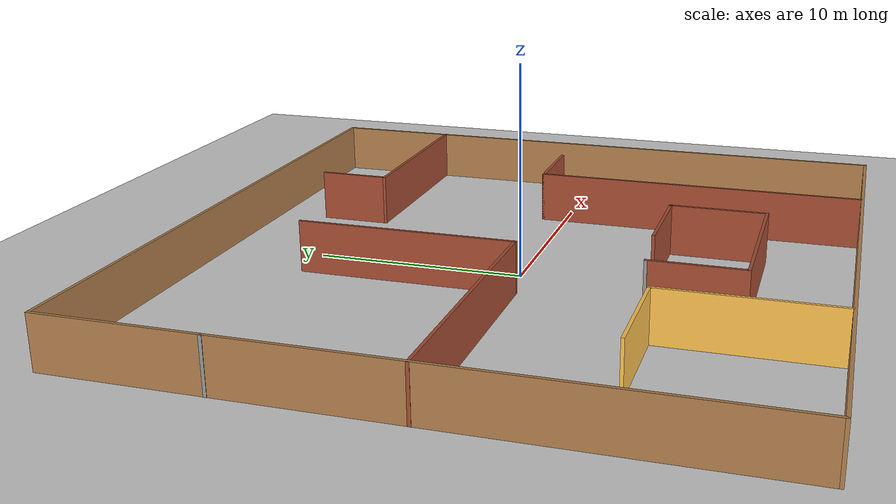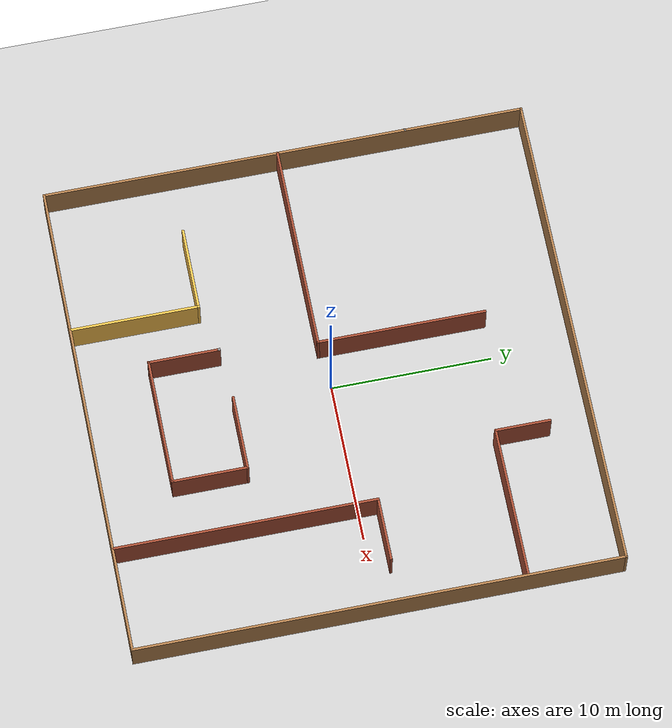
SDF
<sdf version="1.6">
 <world name="default">
  <light name="light0" type="directional">
   <pose>0 -18.818 8 0.75 -0 0</pose>
   <diffuse>0.5 0.5 0.5 1</diffuse>
   <specular>0.1 0.1 0.1 1</specular>
   <direction>0.1 0.1 -0.9</direction>
   <attenuation>
    <range>20</range>
    <constant>0.5</constant>
    <linear>0.01</linear>
    <quadratic>0.001</quadratic>
   </attenuation>
   <cast_shadows>0</cast_shadows>
  </light>
  <light name="light3" type="directional">
   <pose>3.9239 1.64974 4 0 1.2 0</pose>
   <diffuse>0.5 0.5 0.5 1</diffuse>
   <specular>0.1 0.1 0.1 1</specular>
   <direction>0.1 0.1 -0.9</direction>
   <attenuation>
    <range>20</range>
    <constant>0.5</constant>
    <linear>0.01</linear>
    <quadratic>0.001</quadratic>
   </attenuation>
   <cast_shadows>0</cast_shadows>
  </light>
  <light name="light5" type="directional">
   <pose>0.454419 12.4783 5 -0.8 0 0</pose>
   <diffuse>0.5 0.5 0.5 1</diffuse>
   <specular>0.1 0.1 0.1 1</specular>
   <direction>0.1 0.1 -0.9</direction>
   <attenuation>
    <range>20</range>
    <constant>0.5</constant>
    <linear>0.01</linear>
    <quadratic>0.001</quadratic>
   </attenuation>
   <cast_shadows>0</cast_shadows>
  </light>
  <scene><shadows>false</shadows><ambient>0.5 0.5 0.5 1.0</ambient><grid>false</grid></scene>
  <include><uri>model://ground_plane</uri></include>
  <model name="espilon_room">
   <pose>-0.0092 0 0 0 -0 0</pose>
   <link name="Wall_11">
    <collision name="Wall_11_Collision">
     <geometry><box><size>30.15 0.15 2.5</size></box></geometry>
     <pose>0 0 1.25 0 -0 0</pose>
    </collision>
    <visual name="Wall_11_Visual">
     <pose>0 0 1.25 0 -0 0</pose>
     <geometry><box><size>30.15 0.15 2.5</size></box></geometry>
     <material>
      <script><uri>file://media/materials/scripts/gazebo.material</uri><name>Gazebo/Wood</name></script>
      <ambient>1 1 1 1</ambient>
     </material>
     <meta><layer>0</layer></meta>
    </visual>
    <pose>0.0092 -15 0 0 -0 0</pose>
   </link>
   <link name="Wall_13">
    <collision name="Wall_13_Collision">
     <geometry><box><size>30.15 0.15 2.5</size></box></geometry>
     <pose>0 0 1.25 0 -0 0</pose>
    </collision>
    <visual name="Wall_13_Visual">
     <pose>0 0 1.25 0 -0 0</pose>
     <geometry><box><size>30.15 0.15 2.5</size></box></geometry>
     <material>
      <script><uri>file://media/materials/scripts/gazebo.material</uri><name>Gazebo/Wood</name></script>
      <ambient>1 1 1 1</ambient>
     </material>
     <meta><layer>0</layer></meta>
    </visual>
    <pose>-14.9908 0 0 0 -0 1.5708</pose>
   </link>
   <link name="Wall_15">
    <collision name="Wall_15_Collision">
     <geometry><box><size>30.15 0.15 2.5</size></box></geometry>
     <pose>0 0 1.25 0 -0 0</pose>
    </collision>
    <visual name="Wall_15_Visual">
     <pose>0 0 1.25 0 -0 0</pose>
     <geometry><box><size>30.15 0.15 2.5</size></box></geometry>
     <material>
      <script><uri>file://media/materials/scripts/gazebo.material</uri><name>Gazebo/Wood</name></script>
      <ambient>1 1 1 1</ambient>
     </material>
     <meta><layer>0</layer></meta>
    </visual>
    <pose>15.0092 0 0 0 -0 1.5708</pose>
   </link>
   <link name="Wall_17">
    <collision name="Wall_17_Collision">
     <geometry><box><size>30.15 0.15 2.5</size></box></geometry>
     <pose>0 0 1.25 0 -0 0</pose>
    </collision>
    <visual name="Wall_17_Visual">
     <pose>0 0 1.25 0 -0 0</pose>
     <geometry><box><size>30.15 0.15 2.5</size></box></geometry>
     <material>
      <script><uri>file://media/materials/scripts/gazebo.material</uri><name>Gazebo/Wood</name></script>
      <ambient>1 1 1 1</ambient>
     </material>
     <meta><layer>0</layer></meta>
    </visual>
    <pose>0.0092 15 0 0 -0 0</pose>
   </link>
   <link name="Wall_19">
    <collision name="Wall_19_Collision">
     <geometry><box><size>0.16 0.15 2.5</size></box></geometry>
     <pose>0 0 1.25 0 -0 0</pose>
    </collision>
    <visual name="Wall_19_Visual">
     <pose>0 0 1.25 0 -0 0</pose>
     <geometry><box><size>0.16 0.15 2.5</size></box></geometry>
     <material>
      <script><uri>file://media/materials/scripts/gazebo.material</uri><name>Gazebo/Grey</name></script>
      <ambient>1 1 1 1</ambient>
     </material>
     <meta><layer>0</layer></meta>
    </visual>
    <pose>-15.0042 7.65112 0 0 -0 0</pose>
   </link>
   <link name="Wall_21">
    <collision name="Wall_21_Collision">
     <geometry><box><size>13 0.15 2.5</size></box></geometry>
     <pose>0 0 1.25 0 -0 0</pose>
    </collision>
    <visual name="Wall_21_Visual">
     <pose>0 0 1.25 0 -0 0</pose>
     <geometry><box><size>13 0.15 2.5</size></box></geometry>
     <material>
      <script><uri>file://media/materials/scripts/gazebo.material</uri><name>Gazebo/Bricks</name></script>
      <ambient>0.760784 0.662745 0.627451 1</ambient>
     </material>
     <meta><layer>0</layer></meta>
    </visual>
    <pose>-8.57557 -0.367114 0 0 -0 1.8e-05</pose>
   </link>
   <link name="Wall_22">
    <collision name="Wall_22_Collision">
     <geometry><box><size>10.517 0.15 2.5</size></box></geometry>
     <pose>0 0 1.25 0 -0 0</pose>
    </collision>
    <visual name="Wall_22_Visual">
     <pose>0 0 1.25 0 -0 0</pose>
     <geometry><box><size>10.517 0.15 2.5</size></box></geometry>
     <material>
      <script><uri>file://media/materials/scripts/gazebo.material</uri><name>Gazebo/Bricks</name></script>
      <ambient>0.760784 0.662745 0.627451 1</ambient>
     </material>
     <meta><layer>0</layer></meta>
    </visual>
    <pose>-2.1508 4.8165 0 0 -0 1.5708</pose>
   </link>
   <link name="Wall_26">
    <collision name="Wall_26_Collision">
     <geometry><box><size>16.25 0.15 2.5</size></box></geometry>
     <pose>0 0 1.25 0 -0 0</pose>
    </collision>
    <visual name="Wall_26_Visual">
     <pose>0 0 1.25 0 -0 0</pose>
     <geometry><box><size>16.25 0.15 2.5</size></box></geometry>
     <material>
      <script><uri>file://media/materials/scripts/gazebo.material</uri><name>Gazebo/Bricks</name></script>
      <ambient>0.996078 0.47451 0.0196078 1</ambient>
     </material>
     <meta><layer>0</layer></meta>
    </visual>
    <pose>8.53073 -6.85748 0 0 -0 1.5708</pose>
   </link>
   <link name="Wall_27">
    <collision name="Wall_27_Collision">
     <geometry><box><size>4 0.15 2.5</size></box></geometry>
     <pose>0 0 1.25 0 -0 0</pose>
    </collision>
    <visual name="Wall_27_Visual">
     <pose>0 0 1.25 0 -0 0</pose>
     <geometry><box><size>4 0.15 2.5</size></box></geometry>
     <material>
      <script><uri>file://media/materials/scripts/gazebo.material</uri><name>Gazebo/Bricks</name></script>
      <ambient>0.996078 0.47451 0.0196078 1</ambient>
     </material>
     <meta><layer>0</layer></meta>
    </visual>
    <pose>10.4557 1.19252 0 0 -0 0</pose>
   </link>
   <link name="Wall_29">
    <collision name="Wall_29_Collision">
     <geometry><box><size>8 0.15 2.5</size></box></geometry>
     <pose>0 0 1.25 0 -0 0</pose>
    </collision>
    <visual name="Wall_29_Visual">
     <pose>0 0 1.25 0 -0 0</pose>
     <geometry><box><size>8 0.15 2.5</size></box></geometry>
     <material>
      <script><uri>file://media/materials/scripts/gazebo.material</uri><name>Gazebo/Grey</name></script>
      <ambient>1 0.764706 0.305882 1</ambient>
     </material>
     <meta><layer>0</layer></meta>
    </visual>
    <pose>-5.8668 -10.9825 0 0 -0 1.5708</pose>
   </link>
   <link name="Wall_30">
    <collision name="Wall_30_Collision">
     <geometry><box><size>5.25 0.15 2.5</size></box></geometry>
     <pose>0 0 1.25 0 -0 0</pose>
    </collision>
    <visual name="Wall_30_Visual">
     <pose>0 0 1.25 0 -0 0</pose>
     <geometry><box><size>5.25 0.15 2.5</size></box></geometry>
     <material>
      <script><uri>file://media/materials/scripts/gazebo.material</uri><name>Gazebo/Grey</name></script>
      <ambient>1 0.764706 0.305882 1</ambient>
     </material>
     <meta><layer>0</layer></meta>
    </visual>
    <pose>-8.4168 -7.05748 0 0 -0 3.14159</pose>
   </link>
   <link name="Wall_32">
    <collision name="Wall_32_Collision">
     <geometry><box><size>0.16 0.15 2.5</size></box></geometry>
     <pose>0 0 1.25 0 -0 0</pose>
    </collision>
    <visual name="Wall_32_Visual">
     <pose>0 0 1.25 0 -0 0</pose>
     <geometry><box><size>0.16 0.15 2.5</size></box></geometry>
     <material>
      <script><uri>file://media/materials/scripts/gazebo.material</uri><name>Gazebo/Grey</name></script>
      <ambient>1 1 1 1</ambient>
     </material>
     <meta><layer>0</layer></meta>
    </visual>
    <pose>14.9346 9.02687 0 0 -0 0</pose>
   </link>
   <link name="Wall_33">
    <collision name="Wall_33_Collision">
     <geometry><box><size>9.5 0.15 2.5</size></box></geometry>
     <pose>0 0 1.25 0 -0 0</pose>
    </collision>
    <visual name="Wall_33_Visual">
     <pose>0 0 1.25 0 -0 0</pose>
     <geometry><box><size>9.5 0.15 2.5</size></box></geometry>
     <material>
      <script><uri>file://media/materials/scripts/gazebo.material</uri><name>Gazebo/Bricks</name></script>
      <ambient>1 1 1 1</ambient>
     </material>
     <meta><layer>0</layer></meta>
    </visual>
    <pose>10.2646 9.02687 0 0 -0 3.14159</pose>
   </link>
   <link name="Wall_34">
    <collision name="Wall_34_Collision">
     <geometry><box><size>3.5 0.15 2.5</size></box></geometry>
     <pose>0 0 1.25 0 -0 0</pose>
    </collision>
    <visual name="Wall_34_Visual">
     <pose>0 0 1.25 0 -0 0</pose>
     <geometry><box><size>3.5 0.15 2.5</size></box></geometry>
     <material>
      <script><uri>file://media/materials/scripts/gazebo.material</uri><name>Gazebo/Bricks</name></script>
      <ambient>1 1 1 1</ambient>
     </material>
     <meta><layer>0</layer></meta>
    </visual>
    <pose>5.58962 10.7019 0 0 -0 1.5708</pose>
   </link>
   <link name="Wall_36">
    <collision name="Wall_36_Collision">
     <geometry><box><size>0.16 0.15 2.5</size></box></geometry>
     <pose>0 0 1.25 0 -0 0</pose>
    </collision>
    <visual name="Wall_36_Visual">
     <pose>0 0 1.25 0 -0 0</pose>
     <geometry><box><size>0.16 0.15 2.5</size></box></geometry>
     <material>
      <script><uri>file://media/materials/scripts/gazebo.material</uri><name>Gazebo/Grey</name></script>
      <ambient>1 1 1 1</ambient>
     </material>
     <meta><layer>0</layer></meta>
    </visual>
    <pose>-2.84693 -6.3551 0 0 -0 0</pose>
   </link>
   <link name="Wall_37">
    <collision name="Wall_37_Collision">
     <geometry><box><size>4.5 0.15 2.5</size></box></geometry>
     <pose>0 0 1.25 0 -0 0</pose>
    </collision>
    <visual name="Wall_37_Visual">
     <pose>0 0 1.25 0 -0 0</pose>
     <geometry><box><size>4.5 0.15 2.5</size></box></geometry>
     <material>
      <script><uri>file://media/materials/scripts/gazebo.material</uri><name>Gazebo/Bricks</name></script>
      <ambient>0.435294 0.796078 0.67451 1</ambient>
     </material>
     <meta><layer>0</layer></meta>
    </visual>
    <pose>-2.84193 -8.5301 0 0 -0 -1.5708</pose>
   </link>
   <link name="Wall_38">
    <collision name="Wall_38_Collision">
     <geometry><box><size>8 0.15 2.5</size></box></geometry>
     <pose>0 0 1.25 0 -0 0</pose>
    </collision>
    <visual name="Wall_38_Visual">
     <pose>0 0 1.25 0 -0 0</pose>
     <geometry><box><size>8 0.15 2.5</size></box></geometry>
     <material>
      <script><uri>file://media/materials/scripts/gazebo.material</uri><name>Gazebo/Bricks</name></script>
      <ambient>0.435294 0.796078 0.67451 1</ambient>
     </material>
     <meta><layer>0</layer></meta>
    </visual>
    <pose>1.08307 -10.7051 0 0 -0 0</pose>
   </link>
   <link name="Wall_39">
    <collision name="Wall_39_Collision">
     <geometry><box><size>4.75 0.15 2.5</size></box></geometry>
     <pose>0 0 1.25 0 -0 0</pose>
    </collision>
    <visual name="Wall_39_Visual">
     <pose>0 0 1.25 0 -0 0</pose>
     <geometry><box><size>4.75 0.15 2.5</size></box></geometry>
     <material>
      <script><uri>file://media/materials/scripts/gazebo.material</uri><name>Gazebo/Bricks</name></script>
      <ambient>0.435294 0.796078 0.67451 1</ambient>
     </material>
     <meta><layer>0</layer></meta>
    </visual>
    <pose>5.00807 -8.4051 0 0 -0 1.5708</pose>
   </link>
   <link name="Wall_40">
    <collision name="Wall_40_Collision">
     <geometry><box><size>4.75 0.15 2.5</size></box></geometry>
     <pose>0 0 1.25 0 -0 0</pose>
    </collision>
    <visual name="Wall_40_Visual">
     <pose>0 0 1.25 0 -0 0</pose>
     <geometry><box><size>4.75 0.15 2.5</size></box></geometry>
     <material>
      <script><uri>file://media/materials/scripts/gazebo.material</uri><name>Gazebo/Bricks</name></script>
      <ambient>0.435294 0.796078 0.67451 1</ambient>
     </material>
     <meta><layer>0</layer></meta>
    </visual>
    <pose>2.70807 -6.1051 0 0 -0 3.14159</pose>
   </link>
   <static>1</static>
  </model>
 </world>
</sdf>
